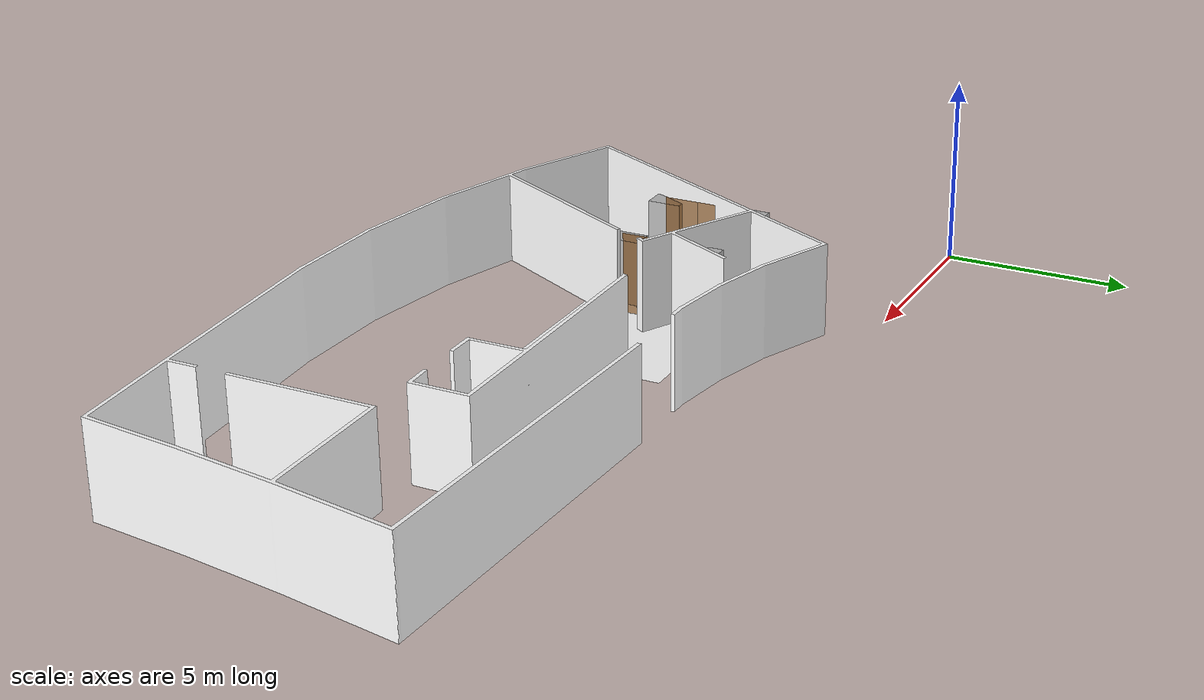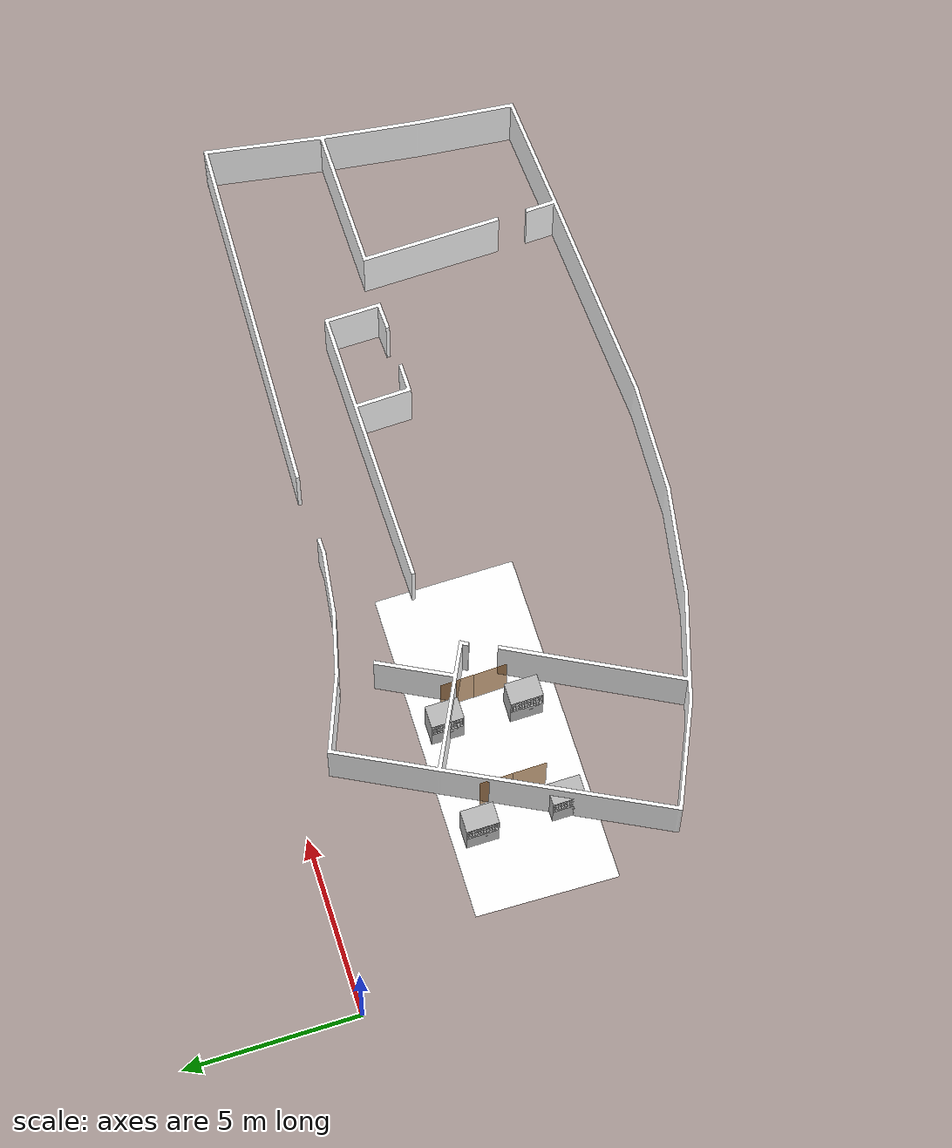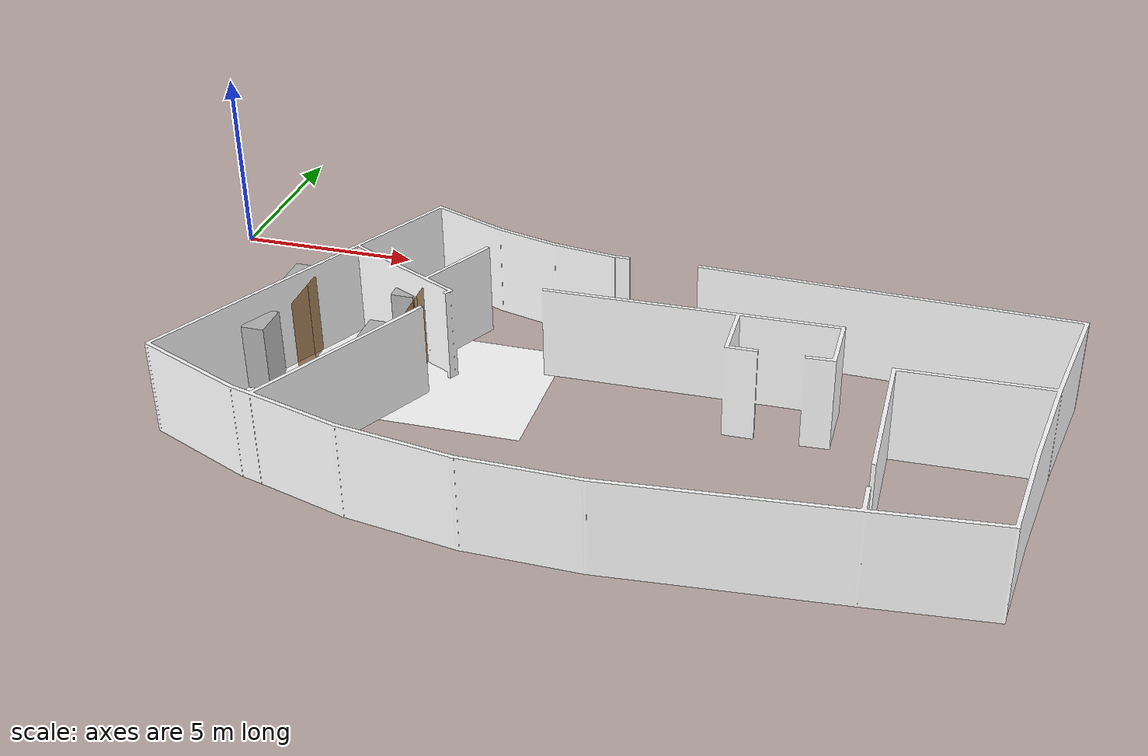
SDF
<sdf version="1.7">
  <world name="world">
    <scene>
      <ambient>0.8 0.8 0.8 1.0</ambient>
      <background>0 0 0</background>
      <grid>false</grid>
    </scene>
    <include>
      <uri>model://sun</uri>
    </include>
    <gui>
      <camera name="gui_camera">
        <pose>6.171511976051526 -25.667290171069755 10 0 0.6 1.57</pose>
      </camera>
      <plugin name="toggle_charging" filename="libtoggle_charging.so" />
      <plugin name="toggle_floors" filename="libtoggle_floors.so">
        <floor name="L1" model_name="building_L1">
          <model name="VendingMachine" />
          <model name="VendingMachine_2" />
          <model name="VendingMachine_3" />
          <model name="VendingMachine_4" />
          <model name="negative_motion" />
          <model name="positive_motion" />
        </floor>
      </plugin>
    </gui>
    <include>
      <name>VendingMachine</name>
      <uri>model://VendingMachine</uri>
      <pose>3.791648278030986 -4.445018096578708 0.0 0 0 -3.1416</pose>
      <static>True</static>
    </include>
    <include>
      <name>VendingMachine_2</name>
      <uri>model://VendingMachine</uri>
      <pose>3.807879180668895 -6.857222020080024 0.0 0 0 -3.1416</pose>
      <static>True</static>
    </include>
    <include>
      <name>VendingMachine_3</name>
      <uri>model://VendingMachine</uri>
      <pose>6.801781633541549 -4.414379988228498 0.0 0 0 -3.1416</pose>
      <static>True</static>
    </include>
    <include>
      <name>VendingMachine_4</name>
      <uri>model://VendingMachine</uri>
      <pose>6.7692590383682125 -6.61959431067334 0.0 0 0 -3.1416</pose>
      <static>True</static>
    </include>
    <model name="negative_motion">
      <pose>7.442415968558777 -5.432580376744042 0.0 0 0 1.596654026471199</pose>
      <link name="right">
        <pose>0.46965257697674084 0 1.11 0 0 0</pose>
        <visual name="right_visual">
          <geometry>
            <box>
              <size>0.9293051539534817 0.03 2.2</size>
            </box>
          </geometry>
          <material>
            <ambient>0.5 0.25 0 0.6</ambient>
            <diffuse>0.5 0.25 0 0.6</diffuse>
          </material>
        </visual>
        <collision name="right_collision">
          <geometry>
            <box>
              <size>0.9293051539534817 0.03 2.2</size>
            </box>
          </geometry>
          <surface>
            <contact>
              <collide_bitmask>0x02</collide_bitmask>
            </contact>
          </surface>
        </collision>
        <inertial>
          <mass>50.0</mass>
          <inertia>
            <ixx>20.17041666666667</ixx>
            <iyy>23.765033621518775</iyy>
            <izz>3.6021169548521015</izz>
          </inertia>
        </inertial>
      </link>
      <joint name="right_joint" type="revolute">
        <parent>world</parent>
        <child>right</child>
        <axis>
          <xyz>0 0 1</xyz>
          <limit>
            <lower>0</lower>
            <upper>1.57</upper>
          </limit>
        </axis>
        <pose>0.46965257697674084 0 0 0 0 0</pose>
      </joint>
      <link name="left">
        <pose>-0.46965257697674084 0 1.11 0 0 0</pose>
        <visual name="left_visual">
          <geometry>
            <box>
              <size>0.9293051539534817 0.03 2.2</size>
            </box>
          </geometry>
          <material>
            <ambient>0.5 0.25 0 0.6</ambient>
            <diffuse>0.5 0.25 0 0.6</diffuse>
          </material>
        </visual>
        <collision name="left_collision">
          <geometry>
            <box>
              <size>0.9293051539534817 0.03 2.2</size>
            </box>
          </geometry>
          <surface>
            <contact>
              <collide_bitmask>0x02</collide_bitmask>
            </contact>
          </surface>
        </collision>
        <inertial>
          <mass>50.0</mass>
          <inertia>
            <ixx>20.17041666666667</ixx>
            <iyy>23.765033621518775</iyy>
            <izz>3.6021169548521015</izz>
          </inertia>
        </inertial>
      </link>
      <joint name="left_joint" type="revolute">
        <parent>world</parent>
        <child>left</child>
        <axis>
          <xyz>0 0 1</xyz>
          <limit>
            <lower>-1.57</lower>
            <upper>0</upper>
          </limit>
        </axis>
        <pose>-0.46965257697674084 0 0 0 0 0</pose>
      </joint>
      <plugin name="door" filename="libdoor.so">
        <v_max_door>0.5</v_max_door>
        <a_max_door>0.3</a_max_door>
        <a_nom_door>0.15</a_nom_door>
        <dx_min_door>0.01</dx_min_door>
        <f_max_door>500.0</f_max_door>
        <door name="negative_motion" type="DoubleSwingDoor" left_joint_name="left_joint" right_joint_name="right_joint" />
      </plugin>
    </model>
    <model name="positive_motion">
      <pose>4.560670876610997 -5.6187494378998295 0.0 0 0 -1.5620784649824977</pose>
      <link name="right">
        <pose>-0.4654555378216558 0 1.11 0 0 0</pose>
        <visual name="right_visual">
          <geometry>
            <box>
              <size>0.9209110756433115 0.03 2.2</size>
            </box>
          </geometry>
          <material>
            <ambient>0.5 0.25 0 0.6</ambient>
            <diffuse>0.5 0.25 0 0.6</diffuse>
          </material>
        </visual>
        <collision name="right_collision">
          <geometry>
            <box>
              <size>0.9209110756433115 0.03 2.2</size>
            </box>
          </geometry>
          <surface>
            <contact>
              <collide_bitmask>0x02</collide_bitmask>
            </contact>
          </surface>
        </collision>
        <inertial>
          <mass>50.0</mass>
          <inertia>
            <ixx>20.17041666666667</ixx>
            <iyy>23.700321705177174</iyy>
            <izz>3.5374050385105047</izz>
          </inertia>
        </inertial>
      </link>
      <joint name="right_joint" type="revolute">
        <parent>world</parent>
        <child>right</child>
        <axis>
          <xyz>0 0 1</xyz>
          <limit>
            <lower>0</lower>
            <upper>1.57</upper>
          </limit>
        </axis>
        <pose>-0.4654555378216558 0 0 0 0 0</pose>
      </joint>
      <link name="left">
        <pose>0.4654555378216558 0 1.11 0 0 0</pose>
        <visual name="left_visual">
          <geometry>
            <box>
              <size>0.9209110756433115 0.03 2.2</size>
            </box>
          </geometry>
          <material>
            <ambient>0.5 0.25 0 0.6</ambient>
            <diffuse>0.5 0.25 0 0.6</diffuse>
          </material>
        </visual>
        <collision name="left_collision">
          <geometry>
            <box>
              <size>0.9209110756433115 0.03 2.2</size>
            </box>
          </geometry>
          <surface>
            <contact>
              <collide_bitmask>0x02</collide_bitmask>
            </contact>
          </surface>
        </collision>
        <inertial>
          <mass>50.0</mass>
          <inertia>
            <ixx>20.17041666666667</ixx>
            <iyy>23.700321705177174</iyy>
            <izz>3.5374050385105047</izz>
          </inertia>
        </inertial>
      </link>
      <joint name="left_joint" type="revolute">
        <parent>world</parent>
        <child>left</child>
        <axis>
          <xyz>0 0 1</xyz>
          <limit>
            <lower>-1.57</lower>
            <upper>0</upper>
          </limit>
        </axis>
        <pose>0.4654555378216558 0 0 0 0 0</pose>
      </joint>
      <plugin name="door" filename="libdoor.so">
        <v_max_door>0.5</v_max_door>
        <a_max_door>0.3</a_max_door>
        <a_nom_door>0.15</a_nom_door>
        <dx_min_door>0.01</dx_min_door>
        <f_max_door>500.0</f_max_door>
        <door name="positive_motion" type="DoubleSwingDoor" left_joint_name="left_joint" right_joint_name="right_joint" />
      </plugin>
    </model>
    <include>
      <name>building_L1</name>
      <uri>model://building_L1</uri>
      <pose>0 0 0.0 0 0 0</pose>
    </include>
    <rmf_charger_waypoints name="charger_waypoints" />
  </world>
</sdf>

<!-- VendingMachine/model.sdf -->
<sdf version="1.6">
  <model name='VendingMachine'>
    <link name="body">
      <pose>0 0 0 0 0 0</pose>

      <visual name="visual">
        <geometry>
          <mesh>
            <uri>model://VendingMachine/meshes/VendingMachine.obj</uri>
          </mesh>
        </geometry>
      </visual>

      <collision name="collision">
        <geometry>
          <mesh>
            <uri>model://VendingMachine/meshes/VendingMachine.obj</uri>
          </mesh>
        </geometry>
      </collision>

    </link>
  </model>
</sdf>

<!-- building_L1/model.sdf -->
<sdf version="1.7">
  <model name="building_L1">
    <static>true</static>
    <link name="floor_1">
      <visual name="visual">
        <geometry>
          <mesh>
            <uri>model://building_L1/meshes/floor_1.obj</uri>
          </mesh>
        </geometry>
        <material>
          <diffuse>1.0 1.0 1.0</diffuse>
          <specular>0.1 0.1 0.1</specular>
          <pbr>
            <metal>
              <metalness>0.0</metalness>
              <albedo_map>model://building_L1/meshes/blue_linoleum.png</albedo_map>
            </metal>
          </pbr>
          <script>
            <uri>model://building_L1/meshes/</uri>
            <name>floor_1_Diffuse</name>
          </script>
        </material>
      </visual>
      <collision name="collision">
        <geometry>
          <mesh>
            <uri>model://building_L1/meshes/floor_1.obj</uri>
          </mesh>
        </geometry>
        <surface>
          <contact>
            <collide_bitmask>0x01</collide_bitmask>
          </contact>
        </surface>
      </collision>
    </link>
    <link name="wall_1">
      <visual name="wall_1">
        <geometry>
          <mesh>
            <uri>model://building_L1/meshes/wall_1.obj</uri>
          </mesh>
        </geometry>
        <material>
          <diffuse>1.0 1.0 1.0</diffuse>
          <specular>0.1 0.1 0.1</specular>
          <pbr>
            <metal>
              <metalness>0.0</metalness>
              <albedo_map>model://building_L1/meshes/default.png</albedo_map>
            </metal>
          </pbr>
          <script>
            <uri>model://building_L1/meshes/</uri>
            <name>wall_1_Diffuse</name>
          </script>
        </material>
      </visual>
      <collision name="collision">
        <geometry>
          <mesh>
            <uri>model://building_L1/meshes/wall_1.obj</uri>
          </mesh>
        </geometry>
        <surface>
          <contact>
            <collide_bitmask>0x01</collide_bitmask>
          </contact>
        </surface>
      </collision>
    </link>
  </model>
</sdf>
